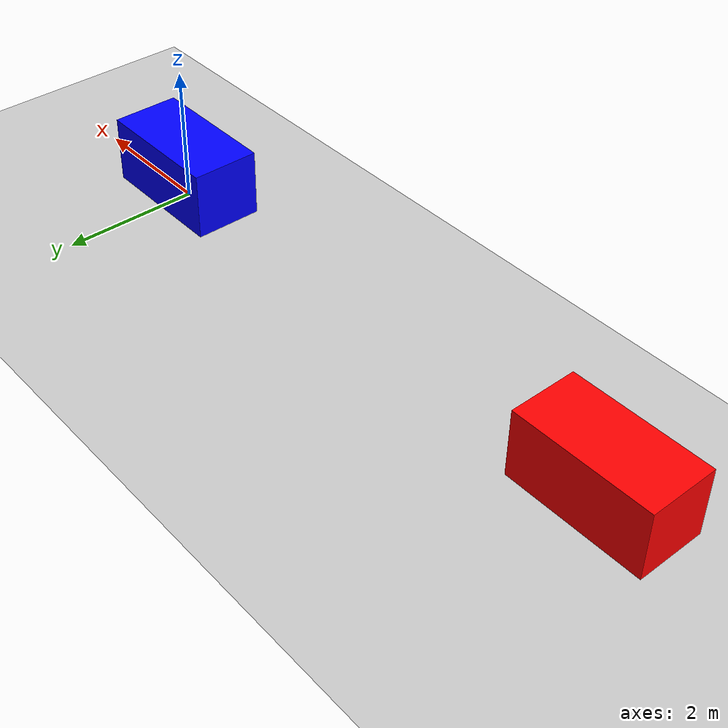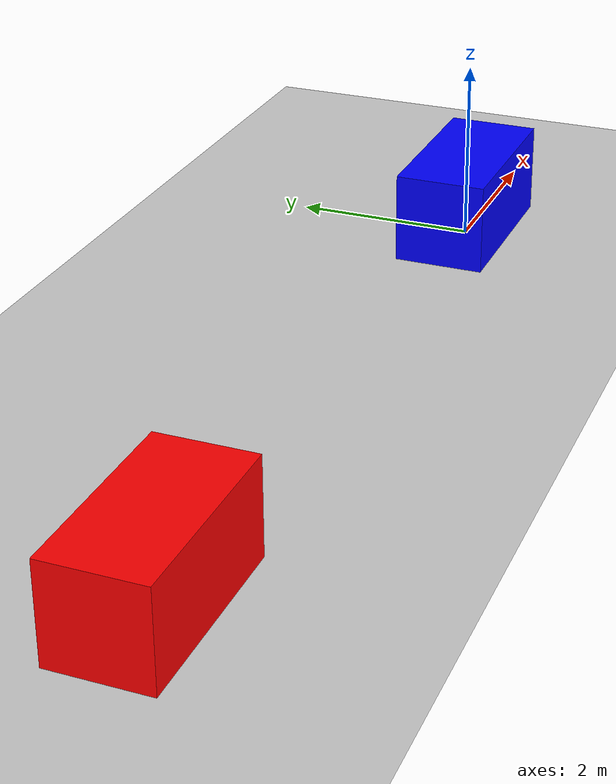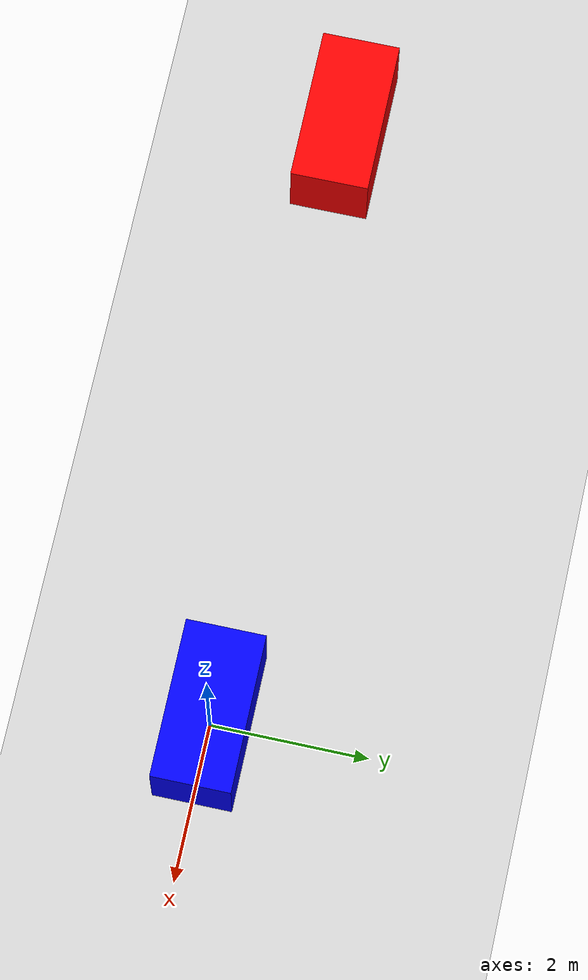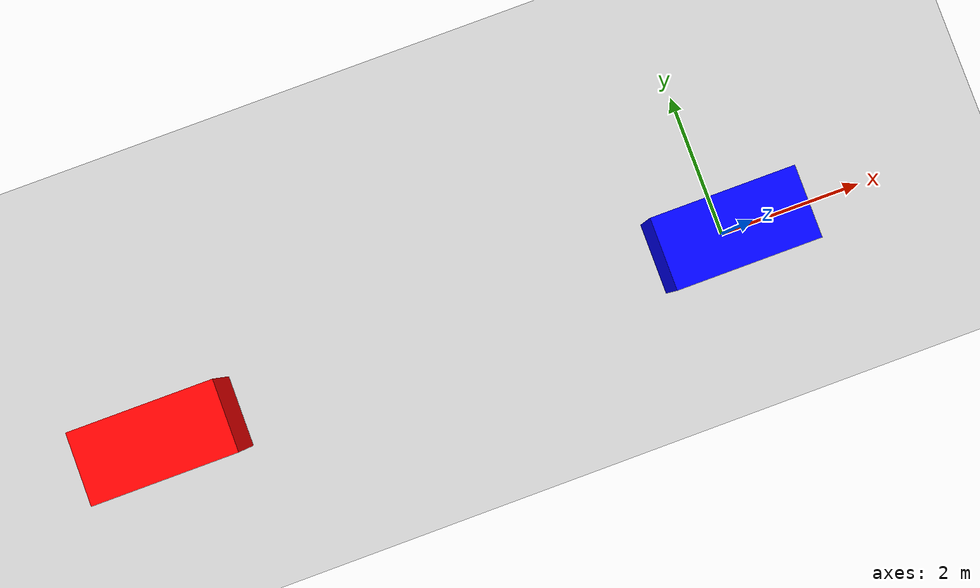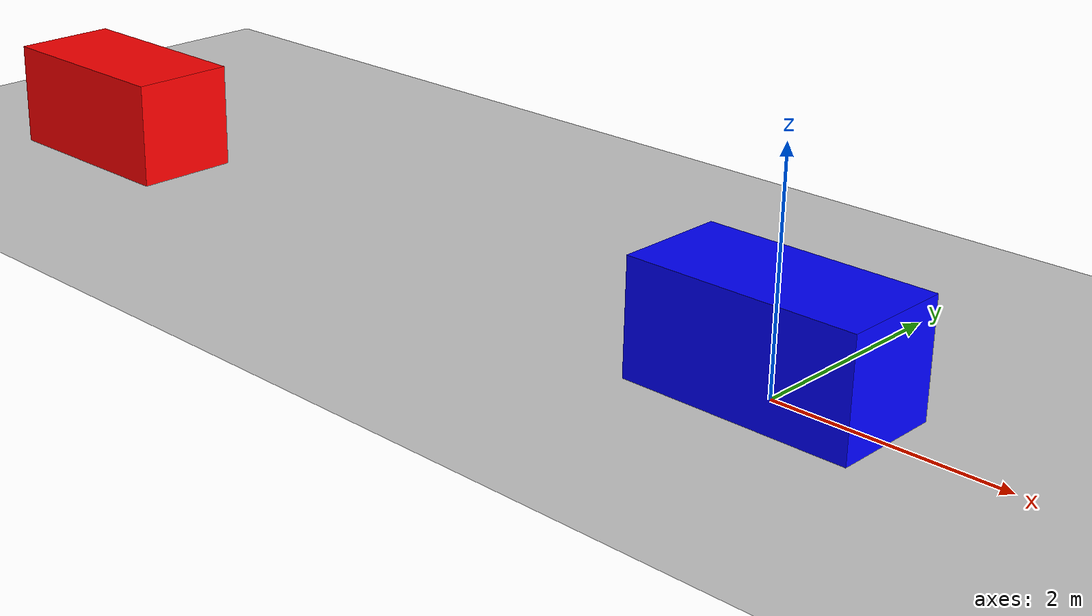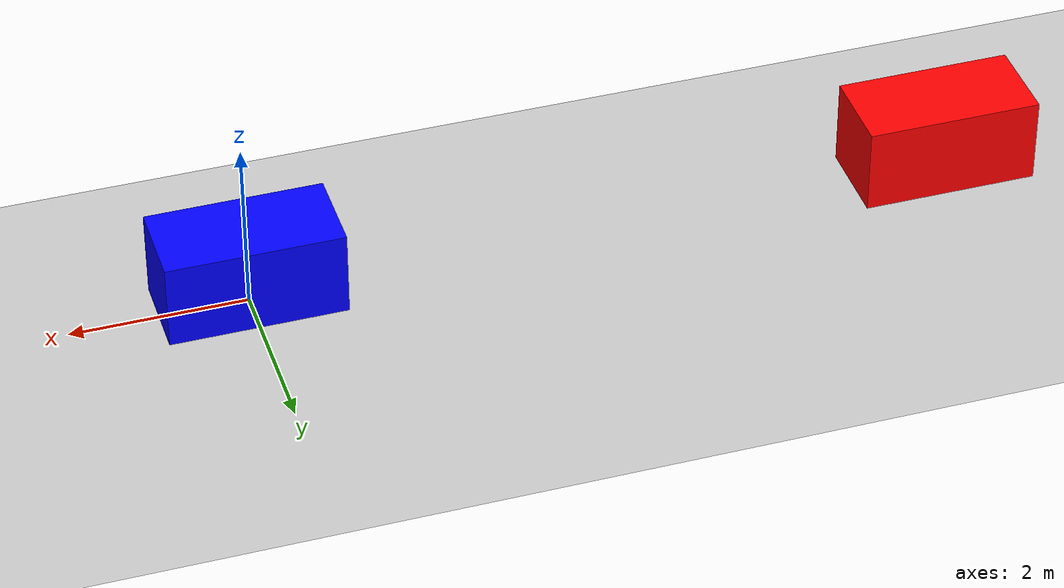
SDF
<?xml version="1.0" ?>
<sdf version="1.7">
  <world name="platoon_world">

    <plugin
      filename="gz-sim-physics-system"
      name="gz::sim::systems::Physics">
    </plugin>

    <plugin
      filename="gz-sim-user-commands-system"
      name="gz::sim::systems::UserCommands">
    </plugin>

    <plugin
      filename="gz-sim-scene-broadcaster-system"
      name="gz::sim::systems::SceneBroadcaster">
    </plugin>

    <light type="directional" name="sun">
      <cast_shadows>true</cast_shadows>
      <pose>0 0 10 0 0 0</pose>
    </light>

    <model name="ground_plane">
      <static>true</static>

      <link name="link">

        <collision name="collision">
          <geometry>
            <plane>
              <normal>0 0 1</normal>
              <size>100 100</size>
            </plane>
          </geometry>
        </collision>

        <visual name="visual">
          <geometry>
            <plane>
              <normal>0 0 1</normal>
              <size>100 100</size>
            </plane>
          </geometry>
        </visual>

      </link>
    </model>

    <model name="master_vehicle">
      <pose>0 0 0.5 0 0 0</pose>

      <link name="body">
        <visual name="visual">
          <geometry>
            <box>
              <size>2 1 1</size>
            </box>
          </geometry>
          <material>
            <ambient>0 0 1 1</ambient>
            <diffuse>0 0 1 1</diffuse>
          </material>
        </visual>

        <collision name="collision">
          <geometry>
            <box>
              <size>2 1 1</size>
            </box>
          </geometry>
        </collision>

        <inertial>
          <mass>1.0</mass>
        </inertial>
      </link>
    </model>

    <model name="slave_vehicle">
      <pose>-8 0 0.5 0 0 0</pose>

      <link name="body">
        <visual name="visual">
          <geometry>
            <box>
              <size>2 1 1</size>
            </box>
          </geometry>
          <material>
            <ambient>1 0 0 1</ambient>
            <diffuse>1 0 0 1</diffuse>
          </material>
        </visual>

        <collision name="collision">
          <geometry>
            <box>
              <size>2 1 1</size>
            </box>
          </geometry>
        </collision>

        <inertial>
          <mass>1.0</mass>
        </inertial>
      </link>
    </model>

  </world>
</sdf>
